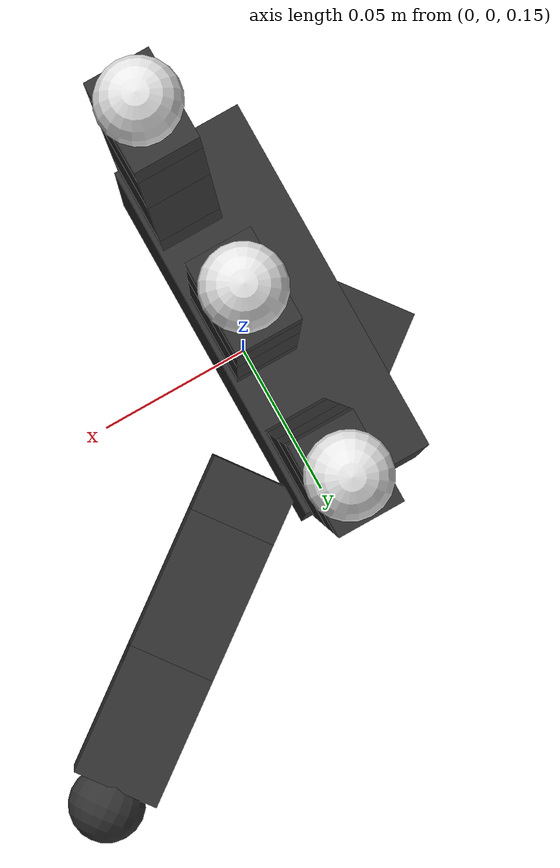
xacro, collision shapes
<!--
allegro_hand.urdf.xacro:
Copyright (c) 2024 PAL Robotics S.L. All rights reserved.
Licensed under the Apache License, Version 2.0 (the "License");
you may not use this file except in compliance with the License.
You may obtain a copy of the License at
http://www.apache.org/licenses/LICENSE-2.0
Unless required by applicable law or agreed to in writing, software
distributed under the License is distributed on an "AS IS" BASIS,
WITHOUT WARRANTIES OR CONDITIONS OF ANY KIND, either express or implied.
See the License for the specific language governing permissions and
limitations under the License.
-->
<?xml version="1.0"?>
<!--
  SABRE Gazebo integration.

  The Allegro Hand geometry included below is adapted from PAL Robotics S.L.
  under Apache-2.0. See third_party/allegro_hand/NOTICE and LICENSE.
-->
<robot xmlns:xacro="http://www.ros.org/wiki/xacro" name="sabre_hand">
  <xacro:arg name="controller_config" default=""/>
  <xacro:arg name="use_sim_time" default="true"/>
  <xacro:property name="deg_to_rad" value="${pi / 180.0}"/>

  <xacro:include filename="allegro/allegro_hand.urdf.xacro"/>

  <link name="world"/>

  <!-- Right-handed Allegro model: three fingers and an opposable thumb. -->
  <xacro:allegro_hand name="sabre" parent="world" reflect="1">
    <origin xyz="0 0 0.27" rpy="0 0 0"/>
  </xacro:allegro_hand>

  <ros2_control name="SABREGazeboSystem" type="system">
    <hardware>
      <plugin>gz_ros2_control/GazeboSimSystem</plugin>
    </hardware>

    <xacro:macro name="controlled_joint" params="joint initial:=0.0">
      <joint name="${joint}">
        <command_interface name="position"/>
        <state_interface name="position">
          <param name="initial_value">${initial}</param>
        </state_interface>
        <state_interface name="velocity"/>
      </joint>
    </xacro:macro>

    <xacro:controlled_joint joint="sabre_finger_1_rotatory_joint"/>
    <xacro:controlled_joint joint="sabre_finger_1_flexor_1_joint"/>
    <xacro:controlled_joint joint="sabre_finger_1_flexor_2_joint"/>
    <xacro:controlled_joint joint="sabre_finger_1_flexor_3_joint"/>
    <xacro:controlled_joint joint="sabre_finger_2_rotatory_joint"/>
    <xacro:controlled_joint joint="sabre_finger_2_flexor_1_joint"/>
    <xacro:controlled_joint joint="sabre_finger_2_flexor_2_joint"/>
    <xacro:controlled_joint joint="sabre_finger_2_flexor_3_joint"/>
    <xacro:controlled_joint joint="sabre_finger_3_rotatory_joint"/>
    <xacro:controlled_joint joint="sabre_finger_3_flexor_1_joint"/>
    <xacro:controlled_joint joint="sabre_finger_3_flexor_2_joint"/>
    <xacro:controlled_joint joint="sabre_finger_3_flexor_3_joint"/>
    <xacro:controlled_joint joint="sabre_thumb_rotatory_joint" initial="0.5"/>
    <xacro:controlled_joint joint="sabre_thumb_flexor_1_joint"/>
    <xacro:controlled_joint joint="sabre_thumb_flexor_2_joint"/>
    <xacro:controlled_joint joint="sabre_thumb_flexor_3_joint"/>
  </ros2_control>

  <gazebo>
    <plugin filename="gz_ros2_control-system" name="gz_ros2_control::GazeboSimROS2ControlPlugin">
      <parameters>$(arg controller_config)</parameters>
    </plugin>
  </gazebo>
</robot>

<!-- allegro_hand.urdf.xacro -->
<robot xmlns:xacro="http://www.ros.org/wiki/xacro">
    <xacro:macro name="allegro_hand" params="name parent *origin reflect">
    <!-- Modified for SABRE: the root model defines deg_to_rad locally. -->
    <xacro:include filename="allegro/allegro_fingers.urdf.xacro" />
    <xacro:include filename="allegro/allegro_palm.urdf.xacro" />

    <!--PALM-->
    <xacro:palm name="${name}" parent="${parent}" reflect="${reflect}">
        <xacro:insert_block name="origin" />
    </xacro:palm>

    <!--FINGERS-->
    <xacro:finger name="${name}" finger_num="1" parent= "${name}_palm_link">
        <origin xyz="0 ${0.0435*reflect} -0.001542" rpy="${5.0*deg_to_rad*-reflect} 0 0"/>
    </xacro:finger>
    <xacro:finger name="${name}" finger_num="2" parent= "${name}_palm_link">
        <origin xyz="0 0 0.0007" rpy="0 0 0"/>
    </xacro:finger>
    <xacro:finger name="${name}" finger_num="3" parent= "${name}_palm_link">
        <origin xyz="0 ${0.0435*-reflect} -0.001542" rpy="${5.0*deg_to_rad*reflect} 0 0"/>
    </xacro:finger>
    <!-- THUMB -->
    <xacro:thumb name="${name}" parent= "${name}_palm_link">
        <origin xyz="-0.0182 ${reflect * 0.019333} -0.045987" rpy="0 -${95*deg_to_rad} ${-reflect*90*deg_to_rad}"/>
    </xacro:thumb>
    </xacro:macro>
</robot>

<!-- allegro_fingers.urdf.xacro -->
<robot xmlns:xacro="http://www.ros.org/wiki/xacro">
    <xacro:property name="links_x" value="0.0196"/>
    <xacro:property name="links_y" value="0.0275"/>
    <xacro:property name="link0_z" value="0.0164"/>
    <xacro:property name="link1_z" value="0.0540"/>
    <xacro:property name="link2_z" value="0.0384"/>
    <xacro:property name="link3_z" value="0.0387"/>
    <xacro:property name="fingerTip_r" value="0.0120"/>
    <xacro:property name="joint_safety_margin" value="0.1"/>
    <xacro:property name="link1_t_z" value="0.0177"/>
    <xacro:property name="link2_t_z" value="0.0514"/>
    <xacro:property name="link3_t_z" value="0.0543"/>
    <xacro:property name="x_coord"      value="${1 if reflect == 1 else 180}"/>
    <xacro:property name="y_coord"      value="${0 if reflect == 1 else 180}"/>

    <!-- Modified for SABRE: PAL-specific utility and PID includes removed. -->

    <!-- THREE FINGER MACRO -->
    <xacro:macro name="finger"
        params="name parent finger_num *origin">
        <link name="${name}_finger_${finger_num}_rotatory_link">
            <inertial>
                <mass value="0.0119" />
                <!-- Temporary fix to prevent wobbling in standalone simulation-->
                <xacro:if value="$(arg use_sim_time)">
                    <origin xyz="0 0 ${link0_z/2}" rpy="0 0 0"/>
                    <inertia ixx="1.01666658333e-05" ixy="0.0" ixz="0.0"
                            iyy="6.47677333333e-06" iyz="0.0"
                            izz="1.13091e-05" />
                </xacro:if>
                <xacro:unless value="$(arg use_sim_time)">
                    <origin xyz="0 0 0" rpy="0 0 0"/>
                    <inertia ixx="1.01666658333e-06" ixy="0.0" ixz="0.0"
                            iyy="6.47677333333e-07" iyz="0.0"
                            izz="1.01666658333e-06" />
                </xacro:unless>
            </inertial>
            <visual>
                <geometry>
                    <mesh filename="package://sabre_hand_description/meshes/allegro/link_0.0.STL"/>
                </geometry>
                <material name="black"/>
            </visual>
            <collision>
                <origin rpy="0 0 0" xyz="0 0 ${link0_z/2}"/>
                <geometry>
                    <box size="${links_x} ${links_y} ${link0_z}"/>
                </geometry>
            </collision>
        </link>

        <joint name="${name}_finger_${finger_num}_rotatory_joint" type="revolute">
            <parent link="${parent}"/>
            <child link="${name}_finger_${finger_num}_rotatory_link"/>
            <xacro:insert_block name="origin"/>
            <axis xyz="0 0 1"/>
            <limit effort="15" velocity="7"
                   lower="${-0.57 + joint_safety_margin}"
                   upper="${0.57 - joint_safety_margin}"/>
            <xacro:dynamics_allegro/>
        </joint>

        <link name="${name}_finger_${finger_num}_flexor_1_link">
            <inertial>
                <mass value="0.065" />
                <xacro:if value="$(arg use_sim_time)">
                    <origin xyz="0 0 ${link1_z/2}" rpy="0 0 0"/>
                    <inertia ixx="1.98914e-05" ixy="0.0" ixz="0.0"
                                iyy="1.78759e-05" iyz="0.0"
                                izz="6.17722e-06" />
                </xacro:if>
                <xacro:unless value="$(arg use_sim_time)">
                    <origin xyz="0 0 0" rpy="0 0 0"/>
                    <inertia ixx="7.19218e-05" ixy="0" ixz="0"
                            iyy="7.4377e-05" iyz="7.32186e-07"
                            izz="5.40622e-06"/>
                </xacro:unless>
            </inertial>
            <visual>
                <geometry>
                    <mesh filename="package://sabre_hand_description/meshes/allegro/link_1.0.STL"/>
                </geometry>
                <material name="black"/>
            </visual>
            <collision>
                <origin rpy="0 0 0" xyz="0 0 ${link1_z/2}"/>
                <geometry>
                    <box size="${links_x} ${links_y} ${link1_z}"/>
                </geometry>
            </collision>
        </link>

        <joint name="${name}_finger_${finger_num}_flexor_1_joint" type="revolute">
            <parent link="${name}_finger_${finger_num}_rotatory_link"/>
            <child link="${name}_finger_${finger_num}_flexor_1_link"/>
            <origin xyz="0 0 ${link0_z}"/>
            <axis xyz="0 1 0"/>
            <limit effort="15" velocity="7"
                   lower="${-0.296 + joint_safety_margin}"
                   upper="${1.71 - joint_safety_margin}"/>
            <xacro:dynamics_allegro/>
        </joint>

        <link name="${name}_finger_${finger_num}_flexor_2_link">
            <inertial>
                <mass value="0.0355" />
                <xacro:if value="$(arg use_sim_time)">
                    <origin xyz="0 0 ${link2_z/2}" rpy="0 0 0"/>
                    <inertia ixx="6.59948e-6" ixy="0" ixz="0"
                            iyy="5.49871e-6" iyz="0"
                            izz="3.37371e-6" />
                </xacro:if>
                <xacro:unless value="$(arg use_sim_time)">
                    <origin xyz="0 0 0" rpy="0 0 0"/>
                    <inertia ixx="3.16925e-05" ixy="1.07094e-09" ixz="-4.91273e-09"
                            iyy="3.10516e-05" iyz="3.87549e-08"
                            izz="3.20319e-06"/>
                </xacro:unless>
            </inertial>
            <visual>
                <geometry>
                    <mesh filename="package://sabre_hand_description/meshes/allegro/link_2.0.STL"/>
                </geometry>
                <material name="black"/>
            </visual>
            <collision>
                <origin rpy="0 0 0" xyz="0 0 ${link2_z/2}"/>
                <geometry>
                    <box size="${links_x} ${links_y} ${link2_z}"/>
                </geometry>
            </collision>
        </link>

        <joint name="${name}_finger_${finger_num}_flexor_2_joint" type="revolute">
            <parent link="${name}_finger_${finger_num}_flexor_1_link"/>
            <child link="${name}_finger_${finger_num}_flexor_2_link"/>
            <origin xyz="0 0 ${link1_z}"/>
            <axis xyz="0 1 0"/>
            <limit effort="15" velocity="7"
                   lower="${-0.274 + joint_safety_margin}"
                   upper="${1.809 - joint_safety_margin}"/>
            <xacro:dynamics_allegro/>
        </joint>

        <link name="${name}_finger_${finger_num}_flexor_3_link">
            <inertial>
                <mass value="0.0096" />
                <xacro:if value="$(arg use_sim_time)">
                    <origin xyz="0 0 ${(link3_z-fingerTip_r*2)/2}" rpy="0 0 0"/>
                    <inertia ixx="1.17531e-6" ixy="0" ixz="0"
                            iyy="8.7764e-7" iyz="0"
                            izz="9.12328e-7" />
                </xacro:if>
                <xacro:unless value="$(arg use_sim_time)">
                    <origin xyz="0 0 0" rpy="0 0 0"/>
                    <inertia ixx="2.13975e-06" ixy="1.59554e-09" ixz="-7.47528e-09"
                            iyy="1.52036e-06" iyz="-9.89336e-09"
                            izz="1.20271e-06"/>
                </xacro:unless>
            </inertial>
            <visual>
                <geometry>
                    <mesh filename="package://sabre_hand_description/meshes/allegro/link_3.0.STL"/>
                </geometry>
                <material name="black"/>
            </visual>
            <collision>
                <origin rpy="0 0 0" xyz="0 0 ${(link3_z-fingerTip_r*2)/2}"/>
                <geometry>
                    <box size="${links_x} ${links_y} ${link3_z-fingerTip_r*2}"/>
                </geometry>
            </collision>
        </link>

        <joint name="${name}_finger_${finger_num}_flexor_3_joint" type="revolute">
            <parent link="${name}_finger_${finger_num}_flexor_2_link"/>
            <child link="${name}_finger_${finger_num}_flexor_3_link"/>
            <origin xyz="0 0 ${link2_z}"/>
            <axis xyz="0 1 0"/>
            <limit effort="15" velocity="7"
                   lower="${-0.327 + joint_safety_margin}"
                   upper="${1.718 - joint_safety_margin}"/>
            <xacro:dynamics_allegro/>
        </joint>

        <link name="${name}_finger_${finger_num}_tip_link">
            <inertial>
                <origin xyz="0 0 0" rpy="0 0 0"/>
                <mass value="0.0168" />
                <inertia ixx="9.68e-07" ixy="0" ixz="0"
                        iyy="9.68e-07" iyz="0"
                        izz="9.68e-07" />
            </inertial>
            <visual>
                <geometry>
                    <mesh filename="package://sabre_hand_description/meshes/allegro/link_3.0_tip.STL"/>
                </geometry>
                <material name="white">
                    <color rgba=".9 .9 .9 1"/>
                </material>
            </visual>
            <collision>
                <geometry>
                    <sphere radius="${fingerTip_r}"/>
                </geometry>
            </collision>
        </link>

        <joint name="${name}_finger_${finger_num}_tip_joint" type="fixed">
            <parent link="${name}_finger_${finger_num}_flexor_3_link"/>
            <child link="${name}_finger_${finger_num}_tip_link"/>
            <origin rpy="0 0 0" xyz="0 0 ${link3_z-fingerTip_r}"/>
        </joint>
    </xacro:macro>

    <!-- THUMB MACRO -->
    <xacro:macro name="thumb"
        params="name parent *origin">
        <link name="${name}_thumb_rotatory_link">
            <inertial>
                <mass value="0.0176" />
                <xacro:if value="$(arg use_sim_time)">
                    <origin xyz="${-0.0358/2} ${reflect * .018/2} ${.029/2}" rpy="0 0 0"/>
                    <inertia ixx="8.13883e-06" ixy="-2.55226e-06" ixz="3.89933e-06"
                            iyy="1.31421e-05" iyz="1.46267e-06"
                            izz="1.00171e-05"/>
                </xacro:if>
                <xacro:unless value="$(arg use_sim_time)">
                    <origin xyz="0 0 0" rpy="0 0 0"/>
                    <inertia ixx="8.13883e-06" ixy="-2.55226e-06" ixz="3.89933e-06"
                            iyy="1.31421e-05" iyz="1.46267e-06"
                            izz="1.00171e-05"/>
                </xacro:unless>
            </inertial>
            <visual>
                <geometry>
                    <mesh filename="package://sabre_hand_description/meshes/allegro/link_12.0.STL" scale="${reflect} 1 1"/>
                </geometry>
                <material name="black">
                    <color rgba=".2 .2 .2 1"/>
                </material>
                <origin rpy="${x_coord*deg_to_rad} ${y_coord*deg_to_rad} 0" xyz="0 0 0"/>
            </visual>
            <collision>
                <origin rpy="${x_coord*deg_to_rad} ${y_coord*deg_to_rad} 0" xyz="0 0 0"/>
                <geometry>
                    <box size="0.0358 0.0340 0.0455"/>
                </geometry>
            </collision>
        </link>

        <joint name="${name}_thumb_rotatory_joint" type="revolute">
            <parent link="${parent}"/>
            <child link="${name}_thumb_rotatory_link"/>
            <xacro:insert_block name="origin"/>
            <axis xyz="${-reflect} 0 0"/>
            <limit effort="15" velocity="7"
                   lower="${0.363 + joint_safety_margin}"
                   upper="${1.496 - joint_safety_margin}"/>
            <dynamics damping="0.11" friction="0.1"/>
        </joint>

        <link name="${name}_thumb_flexor_1_link">
            <inertial>
                <mass value="0.0119" />
                <xacro:if value="$(arg use_sim_time)">
                    <origin xyz="0 0 ${link1_t_z/2}" rpy="0 0 0"/>
                    <inertia ixx="1.9263e-06" ixy="3.05433e-09" ixz="8.86582e-08"
                            iyy="1.15276e-06" iyz="-3.64521e-08"
                            izz="1.4957e-06"/>
                </xacro:if>
                <xacro:unless value="$(arg use_sim_time)">
                    <origin xyz="0 0 0" rpy="0 0 0"/>
                    <inertia ixx="1.9263e-06" ixy="3.05433e-09" ixz="8.86582e-08"
                            iyy="1.15276e-06" iyz="-3.64521e-08"
                            izz="1.4957e-06"/>
                </xacro:unless>
            </inertial>
            <visual>
                <geometry>
                    <mesh filename="package://sabre_hand_description/meshes/allegro/link_13.0.STL"/>
                </geometry>
                <material name="black">
                    <color rgba=".2 .2 .2 1"/>
                </material>
            </visual>
            <collision>
                <origin rpy="0 0 0" xyz="0 0 ${link1_t_z/2}"/>
                <geometry>
                    <box size="${links_x} ${links_y} ${link1_t_z}"/>
                </geometry>
            </collision>
        </link>

        <joint name="${name}_thumb_flexor_1_joint" type="revolute">
            <parent link="${name}_thumb_rotatory_link"/>
            <child link="${name}_thumb_flexor_1_link"/>
            <origin xyz="-0.027 ${reflect * 0.005} 0.0399"/>
            <axis xyz="0 0 ${reflect}"/>
            <limit effort="15" velocity="7"
                   lower="${-0.205 + joint_safety_margin}"
                   upper="${1.263 - joint_safety_margin}"/>
            <xacro:dynamics_allegro/>
        </joint>

        <link name="${name}_thumb_flexor_2_link">
            <inertial>
                <mass value="0.038" />
                <xacro:if value="$(arg use_sim_time)">
                    <origin xyz="0 0 ${link2_t_z/2}" rpy="0 0 0"/>
                    <inertia ixx="1.0761e-05" ixy="0.0" ixz="0.0"
                        iyy="9.58271e-06" iyz="0.0"
                        izz="3.6113e-06" />
                </xacro:if>
                <xacro:unless value="$(arg use_sim_time)">
                    <origin xyz="0 0 0" rpy="0 0 0"/>
                    <inertia ixx="3.67044e-05" ixy="1.02277e-09" ixz="1.4854e-07"
                            iyy="3.54042e-05" iyz="-3.67203e-08"
                            izz="3.63275e-06"/>
                </xacro:unless>
            </inertial>
            <visual>
                <geometry>
                    <mesh filename="package://sabre_hand_description/meshes/allegro/link_14.0.STL"/>
                </geometry>
                <material name="black">
                </material>
            </visual>
            <collision>
                <origin rpy="0 0 0" xyz="0 0 ${link2_t_z/2}"/>
                <geometry>
                    <box size="${links_x} ${links_y} ${link2_t_z}"/>
                </geometry>
            </collision>
        </link>

        <joint name="${name}_thumb_flexor_2_joint" type="revolute">
            <parent link="${name}_thumb_flexor_1_link"/>
            <child link="${name}_thumb_flexor_2_link"/>
            <origin xyz="0 0 ${link1_t_z}"/>
            <axis xyz="0 1 0"/>
            <limit effort="15" velocity="7"
                   lower="${-0.289 + joint_safety_margin}"
                   upper="${1.744 - joint_safety_margin}"/>
            <dynamics damping="0.2" friction="0.1"/>
        </joint>

        <link name="${name}_thumb_flexor_3_link">
            <inertial>
                <mass value="0.0388" />
                <xacro:if value="$(arg use_sim_time)">
                    <origin xyz="0 0 ${(link3_t_z-(fingerTip_r*2))/2}" rpy="0 0 0"/>
                    <inertia ixx="8.06088e-6" ixy="0" ixz="0"
                            iyy="6.88259e-6" iyz="0"
                            izz="3.6113e-6" />
                </xacro:if>
                <xacro:unless value="$(arg use_sim_time)">
                    <origin xyz="0 0 0" rpy="0 0 0"/>
                    <inertia ixx="4.30919e-05" ixy="0" ixz="0"
                            iyy="3.85425e-05" iyz="-3.0146e-08"
                            izz="1.72974e-05"/>
                </xacro:unless>
            </inertial>
            <visual>
                <geometry>
                    <mesh filename="package://sabre_hand_description/meshes/allegro/link_15.0.STL"/>
                </geometry>
                <material name="black">
                </material>
            </visual>
            <collision>
                <origin rpy="0 0 0" xyz="0 0 ${(link3_t_z-(fingerTip_r*2))/2}"/>
                <geometry>
                    <box size="${links_x} ${links_y} ${link3_t_z-fingerTip_r}"/>
                </geometry>
            </collision>
        </link>

        <joint name="${name}_thumb_flexor_3_joint" type="revolute">
            <parent link="${name}_thumb_flexor_2_link"/>
            <child link="${name}_thumb_flexor_3_link"/>
            <origin xyz="0 0 ${link2_t_z}"/>
            <axis xyz="0 1 0"/>
            <limit effort="15" velocity="7"
                   lower="${-0.262 + joint_safety_margin}"
                   upper="${1.819 - joint_safety_margin}"/>
            <xacro:dynamics_allegro/>
        </joint>

        <link name="${name}_thumb_finger_tip_link">
            <inertial>
              <origin xyz="0 0 0" rpy="0 0 0"/>
              <mass value="0.0168" />
              <inertia ixx="9.68e-07" ixy="0" ixz="0"
                       iyy="9.68e-07" iyz="0"
                       izz="9.68e-07" />
            </inertial>
            <visual>
                <geometry>
                    <mesh filename="package://sabre_hand_description/meshes/allegro/link_15.0_tip.STL"/>
                </geometry>
                <material name="black"/>
            </visual>
            <collision>
                <origin rpy="0 0 0" xyz="0 0 0"/>
                <geometry>
                    <sphere radius="${fingerTip_r}"/>
                </geometry>
            </collision>
        </link>

        <joint name="${name}_thumb_finger_tip_joint" type="fixed">
            <parent link="${name}_thumb_flexor_3_link"/>
            <child link="${name}_thumb_finger_tip_link"/>
            <origin rpy="0 0 0" xyz="0 0 ${link3_t_z-fingerTip_r}"/>
        </joint>
    </xacro:macro>
    <!-- END THUMB MACRO -->

    <xacro:macro name="dynamics_allegro">
        <dynamics damping="1" friction="10"/>
    </xacro:macro>

</robot>

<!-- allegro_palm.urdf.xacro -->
<robot xmlns:xacro="http://www.ros.org/wiki/xacro">
    <xacro:macro name="palm" params="name parent reflect *origin">
        <!-- PALM MACRO -->
        <xacro:property name="palm_link_z" value="0.095"/>
        <!-- Modified for SABRE: the root model defines deg_to_rad locally. -->
        <xacro:property name="x_coord"      value="${0 if reflect == 1 else -180}"/>

        <link name="${name}_palm_link">
            <inertial>
                <mass value="0.4154"/>
                <xacro:if value="$(arg use_sim_time)">
                    <origin xyz="-0.009300 0 -${palm_link_z/2}" rpy="0 0 0"/>
                    <inertia
                        ixx="7.54436e-4" ixy="0.0" ixz="0.0"
                        iyy="3.7004e-4" iyz="0.0"
                        izz="4.99645e-4"/>
                </xacro:if>
                <xacro:unless value="$(arg use_sim_time)">
                    <origin xyz="0 0 0" rpy="0 0 0"/>
                    <inertia ixx="2.089e-03" ixy="-0.0036e-03" ixz="0.2233e-03"
                            iyy="1.829e-03" iyz="-0.018e-03"
                            izz="0.4825e-03"/>
                </xacro:unless>
            </inertial>
            <visual>
                <geometry>
                    <mesh filename="package://sabre_hand_description/meshes/allegro/base_link.STL" scale="${reflect} 1 1" />
                </geometry>
                <origin rpy="${x_coord*deg_to_rad} ${x_coord*deg_to_rad} 0" xyz="0 0 0 "/>
                <material name="black">
                    <color rgba="0.2 0.2 0.2 1"/>
                </material>
            </visual>
            <collision>
                <origin xyz="-0.009300 0 -${palm_link_z/2}" rpy="0 0 0"/>
                <geometry>
                    <box size="0.0408 0.1130 ${palm_link_z}"/>
                </geometry>
            </collision>
        </link>

        <joint name="${name}_palm_joint" type="fixed">
            <parent link="${parent}" />
            <child link="${name}_palm_link" />
            <xacro:insert_block name="origin"/>
            <axis xyz="0 0 0" />
        </joint>
    </xacro:macro>
</robot>
